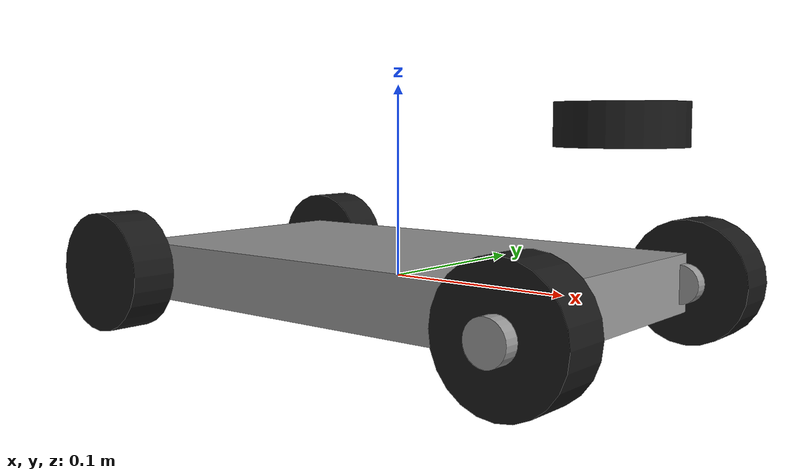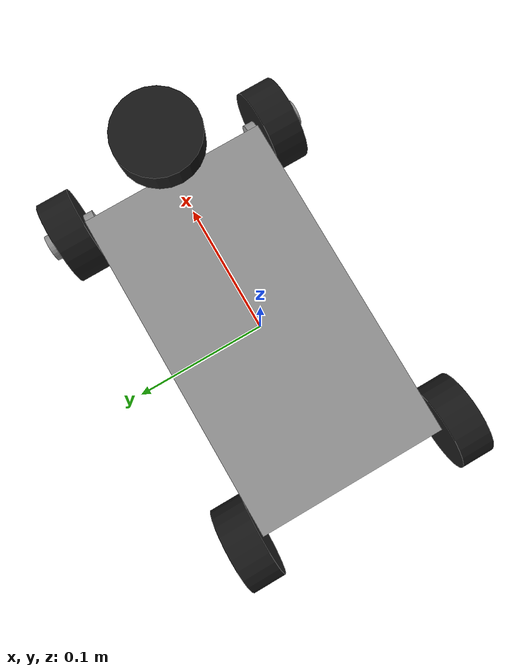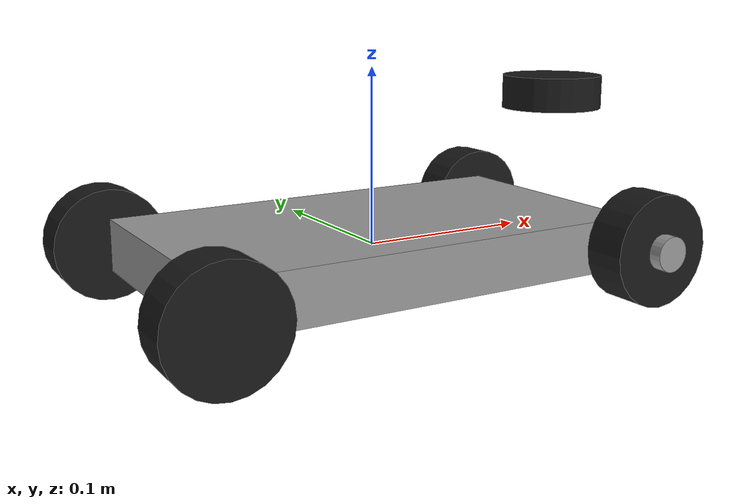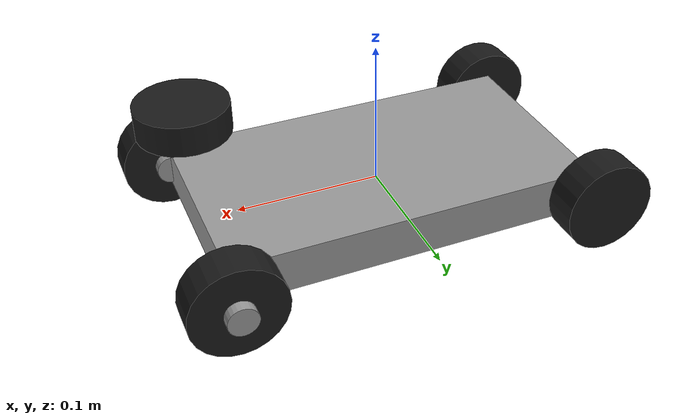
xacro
<?xml version="1.0"?>
<robot xmlns:xacro="http://www.ros.org/wiki/xacro" name="smart_car">

  <!-- ======================== Parameters ======================== -->
  <!-- Geometry -->
  <xacro:property name="wheel_diameter" value="0.064"/>
  <xacro:property name="wheel_radius"   value="${wheel_diameter/2.0}"/>
  <xacro:property name="wheel_width"    value="0.025"/>
  <xacro:property name="wheelbase_len"  value="0.257"/>
  <xacro:property name="wheelbase_wid"  value="0.17"/>

  <!-- Chassis (simple block) -->
  <xacro:property name="chassis_len" value="${wheelbase_len}"/>
  <xacro:property name="chassis_wid" value="${wheelbase_wid - wheel_width}"/>
  <xacro:property name="chassis_hei" value="0.03"/>

  <!-- Masses (assumed) -->
  <xacro:property name="m_chassis" value="2.0"/>
  <xacro:property name="m_wheel"   value="0.3"/>

  <!-- ========================= Materials ======================== -->
  <material name="gray">
    <color rgba="0.6 0.6 0.6 1"/>
  </material>

  <material name="black">
    <color rgba="0.1 0.1 0.1 1"/>
  </material>

  <!-- ===================== Inertia Helpers ====================== -->
  <xacro:macro name="inertial_box" params="mass x y z">
    <inertial>
      <mass value="${mass}"/>
      <origin xyz="0 0 0" rpy="0 0 0"/>
      <inertia
        ixx="${mass*((y*y+z*z)/12.0)}"
        ixy="0"
        ixz="0"
        iyy="${mass*((x*x+z*z)/12.0)}"
        iyz="0"
        izz="${mass*((x*x+y*y)/12.0)}"/>
    </inertial>
  </xacro:macro>

  <!-- Solid cylinder, axis = z -->
  <xacro:macro name="inertial_cyl_z" params="mass r h">
    <inertial>
      <mass value="${mass}"/>
      <origin xyz="0 0 0" rpy="0 0 0"/>
      <inertia
        ixx="${mass*((3*r*r+h*h)/12.0)}"
        ixy="0"
        ixz="0"
        iyy="${mass*((3*r*r+h*h)/12.0)}"
        iyz="0"
        izz="${mass*(r*r/2.0)}"/>
    </inertial>
  </xacro:macro>

  <!-- ========================= Base Links ======================= -->
  <!-- CHANGED: make base_link the parent and base_footprint the child -->
  <link name="base_link"/>
  <link name="base_footprint"/>

  <joint name="base_link_to_base_footprint" type="fixed">
    <!-- was +wheel_radius when base_footprint was parent; now negative -->
    <origin xyz="0 0 -${wheel_radius}" rpy="0 0 0"/>
    <parent link="base_link"/>
    <child  link="base_footprint"/>
  </joint>

  <!-- ========================= Chassis ========================== -->
  <link name="chassis_link">
    <visual>
      <geometry>
        <box size="${chassis_len} ${chassis_wid} ${chassis_hei}"/>
      </geometry>
      <material name="gray"/>
    </visual>
    <collision>
      <geometry>
        <box size="${chassis_len} ${chassis_wid} ${chassis_hei}"/>
      </geometry>
    </collision>
    <xacro:inertial_box mass="${m_chassis}" x="${chassis_len}" y="${chassis_wid}" z="${chassis_hei}"/>
  </link>

  <joint name="chassis_fixed" type="fixed">
    <origin xyz="0 0 0" rpy="0 0 0"/>
    <parent link="base_link"/>
    <child  link="chassis_link"/>
  </joint>

  <!-- ========================= Wheel Macros ===================== -->
  <!-- Front: steer joint (about z) → wheel joint (about y) -->
  <xacro:macro name="steered_wheel"
               params="x y steer_joint_name wheel_joint_name steer_link_name wheel_link_name">

    <link name="${steer_link_name}">
      <visual>
        <geometry>
          <cylinder radius="0.01" length="0.04"/>
        </geometry>
        <origin rpy="1.5708 0 0"/>
        <material name="gray"/>
      </visual>
      <collision>
        <geometry>
          <cylinder radius="0.01" length="0.04"/>
        </geometry>
        <origin rpy="1.5708 0 0"/>
      </collision>
      <xacro:inertial_cyl_z mass="0.05" r="0.01" h="0.04"/>
    </link>

    <joint name="${steer_joint_name}" type="continuous">
      <parent link="chassis_link"/>
      <child  link="${steer_link_name}"/>
      <origin xyz="${x} ${y} 0"/>
      <axis xyz="0 0 1"/>
    </joint>

    <link name="${wheel_link_name}">
      <visual>
        <geometry>
          <cylinder radius="${wheel_radius}" length="${wheel_width}"/>
        </geometry>
        <origin rpy="1.5708 0 0"/>
        <material name="black"/>
      </visual>
      <collision>
        <geometry>
          <cylinder radius="${wheel_radius}" length="${wheel_width}"/>
        </geometry>
        <origin rpy="1.5708 0 0"/>
      </collision>
      <xacro:inertial_cyl_z mass="${m_wheel}" r="${wheel_radius}" h="${wheel_width}"/>
    </link>

    <joint name="${wheel_joint_name}" type="continuous">
      <parent link="${steer_link_name}"/>
      <child  link="${wheel_link_name}"/>
      <axis xyz="0 1 0"/>
    </joint>

  </xacro:macro>

  <!-- Rear: only wheel joint (about y) -->
  <xacro:macro name="fixed_wheel" params="x y joint_name link_name">
    <link name="${link_name}">
      <visual>
        <geometry>
          <cylinder radius="${wheel_radius}" length="${wheel_width}"/>
        </geometry>
        <origin rpy="1.5708 0 0"/>
        <material name="black"/>
      </visual>
      <collision>
        <geometry>
          <cylinder radius="${wheel_radius}" length="${wheel_width}"/>
        </geometry>
        <origin rpy="1.5708 0 0"/>
      </collision>
      <xacro:inertial_cyl_z mass="${m_wheel}" r="${wheel_radius}" h="${wheel_width}"/>
    </link>

    <joint name="${joint_name}" type="continuous">
      <parent link="chassis_link"/>
      <child  link="${link_name}"/>
      <origin xyz="${x} ${y} 0"/>
      <axis xyz="0 1 0"/>
    </joint>
  </xacro:macro>

  <!-- ====================== Wheel Positions ===================== -->
  <xacro:property name="x_front" value="${  wheelbase_len/2.0 }"/>
  <xacro:property name="x_back"  value="${ -wheelbase_len/2.0 }"/>
  <xacro:property name="y_left"  value="${  wheelbase_wid/2.0 }"/>
  <xacro:property name="y_right" value="${ -wheelbase_wid/2.0 }"/>

  <!-- ===================== Instantiate Wheels =================== -->
  <!-- Rear -->
  <xacro:fixed_wheel x="${x_back}"  y="${y_left}"
                     joint_name="back_left_wheel_joint"
                     link_name="back_left_wheel_link"/>

  <xacro:fixed_wheel x="${x_back}"  y="${y_right}"
                     joint_name="back_right_wheel_joint"
                     link_name="back_right_wheel_link"/>

  <!-- Front -->
  <xacro:steered_wheel x="${x_front}" y="${y_left}"
                       steer_joint_name="front_left_wheel_steer_joint"
                       wheel_joint_name="front_left_wheel_joint"
                       steer_link_name="front_left_steer_link"
                       wheel_link_name="front_left_wheel_link"/>

  <xacro:steered_wheel x="${x_front}" y="${y_right}"
                       steer_joint_name="front_right_wheel_steer_joint"
                       wheel_joint_name="front_right_wheel_joint"
                       steer_link_name="front_right_steer_link"
                       wheel_link_name="front_right_wheel_link"/>

  <!-- ============================ IMU =========================== -->
  <link name="imu_link">
    <visual>
      <geometry>
        <box size="0.02 0.02 0.02"/>
      </geometry>
      <origin xyz="0 0 0" rpy="0 0 0"/>
      <material name="gray"/>
    </visual>
    <collision>
      <geometry>
        <box size="0.02 0.02 0.02"/>
      </geometry>
      <origin xyz="0 0 0" rpy="0 0 0"/>
    </collision>
    <xacro:inertial_box mass="0.01" x="0.02" y="0.02" z="0.01"/>
  </link>

  <joint name="imu_fixed_joint" type="fixed">
    <origin xyz="0 0 0" rpy="0 0 0"/>
    <parent link="chassis_link"/>
    <child  link="imu_link"/>
  </joint>

  <gazebo reference="imu_link">
    <sensor name="imu_sensor" type="imu">
      <always_on>true</always_on>
      <update_rate>100</update_rate>
      <visualize>false</visualize>
      <plugin name="imu_plugin" filename="libgazebo_ros_imu_sensor.so">
        <ros>
          <namespace>/</namespace>
          <remapping>~/out:=/imu_data</remapping>
        </ros>
        <initial_orientation_as_reference>false</initial_orientation_as_reference>
      </plugin>
    </sensor>
  </gazebo>

  <!-- ============================ LIDAR ========================= -->
  <link name="sllidar_base_link">
    <visual>
      <geometry>
        <cylinder radius="0.03" length="0.02"/>
      </geometry>
      <origin xyz="0 0 0" rpy="0 0 0"/>
      <material name="black"/>
    </visual>
    <collision>
      <geometry>
        <cylinder radius="0.03" length="0.02"/>
      </geometry>
      <origin xyz="0 0 0" rpy="0 0 0"/>
    </collision>
    <xacro:inertial_cyl_z mass="0.15" r="0.03" h="0.02"/>
  </link>

  <!-- Mount at front; face +X -->
  <joint name="sllidar_mount_joint" type="fixed">
    <origin xyz="${x_front} 0 0.08" rpy="0 0 0"/>
    <parent link="base_link"/>
    <child  link="sllidar_base_link"/>
  </joint>

  <gazebo reference="sllidar_base_link">
    <sensor name="front_laser" type="ray">
      <always_on>true</always_on>
      <update_rate>15</update_rate>
      <visualize>true</visualize>

      <ray>
        <scan>
          <horizontal>
            <!-- 135° total FOV, centered forward (±67.5°) -->
            <samples>720</samples>
            <resolution>1</resolution>
            <min_angle>-1.178097</min_angle> <!-- -67.5 deg -->
            <max_angle> 1.178097</max_angle> <!-- +67.5 deg -->
          </horizontal>
        </scan>

        <range>
          <min>0.12</min>
          <max>12.0</max>
          <resolution>0.01</resolution>
        </range>

        <noise type="gaussian">
          <mean>0.0</mean>
          <stddev>0.01</stddev>
        </noise>
      </ray>

      <plugin name="gazebo_ros_ray_sensor" filename="libgazebo_ros_ray_sensor.so">
        <ros>
          <namespace>/</namespace>
          <remapping>~/out:=/scan</remapping>
        </ros>
        <output_type>sensor_msgs/LaserScan</output_type>
        <frame_name>sllidar_base_link</frame_name>
      </plugin>
    </sensor>
  </gazebo>

  <!-- ============== Gazebo Vehicle Control Plugin (2.2.2) ============== -->
  <gazebo>
    <plugin name="smartcar_plugin" filename="libcar_gazebo_plugin.so">
      <param name="cmd_vel_topic"  value="/cmd_vel"/>
      <param name="status_topic"   value="/smart_car/vehicle_status"/>
    </plugin>
  </gazebo>

</robot>
